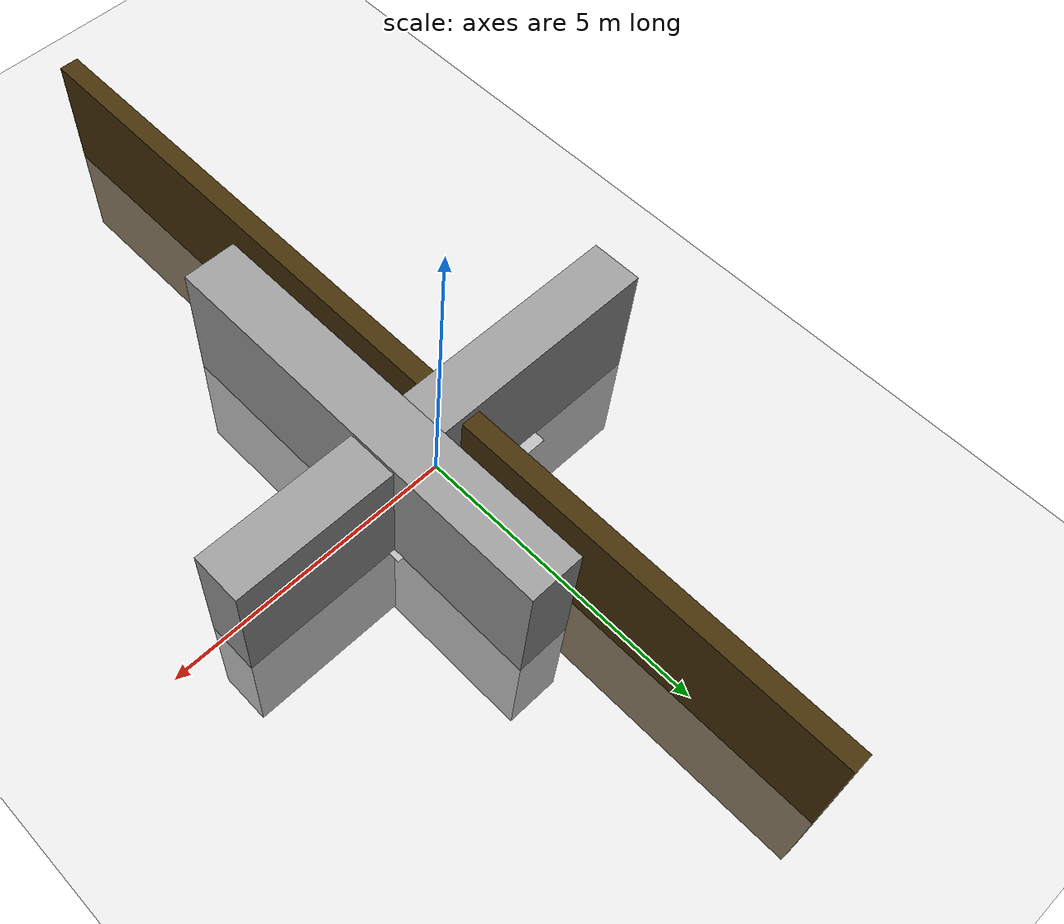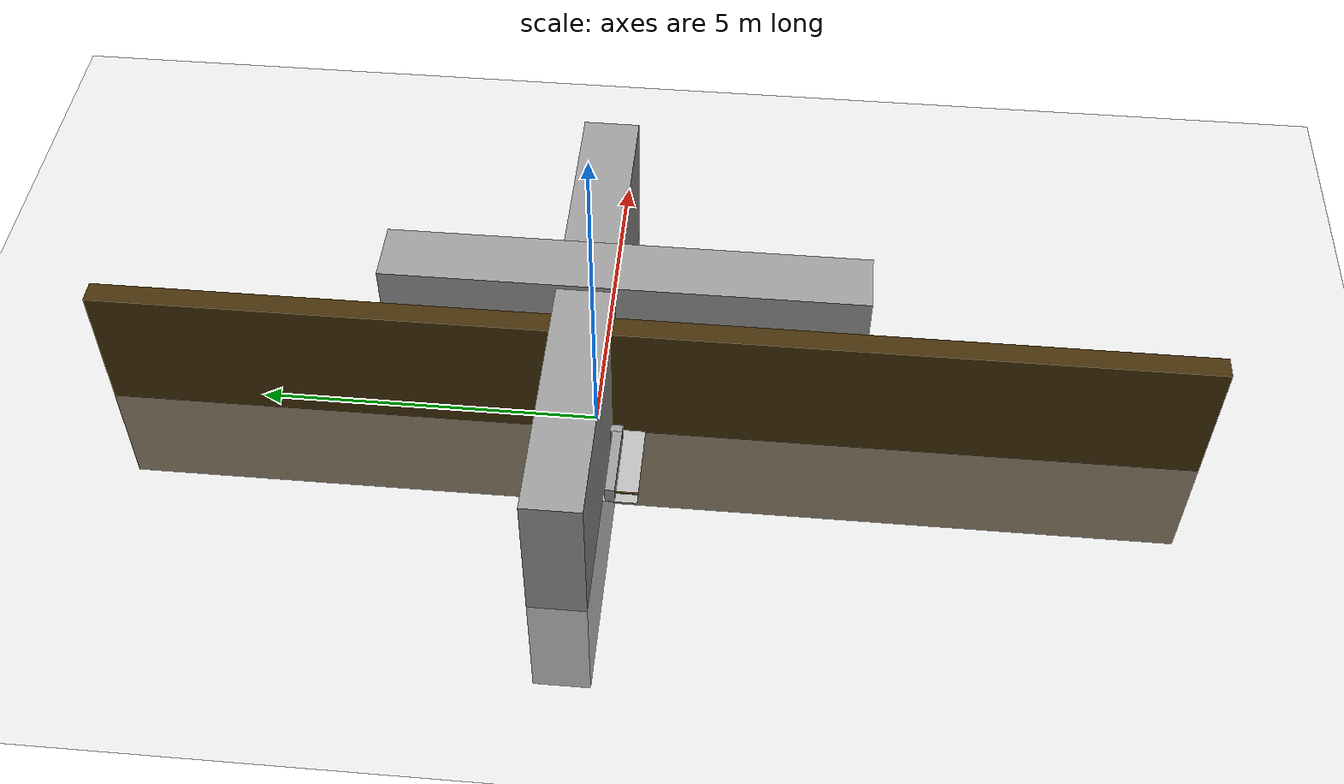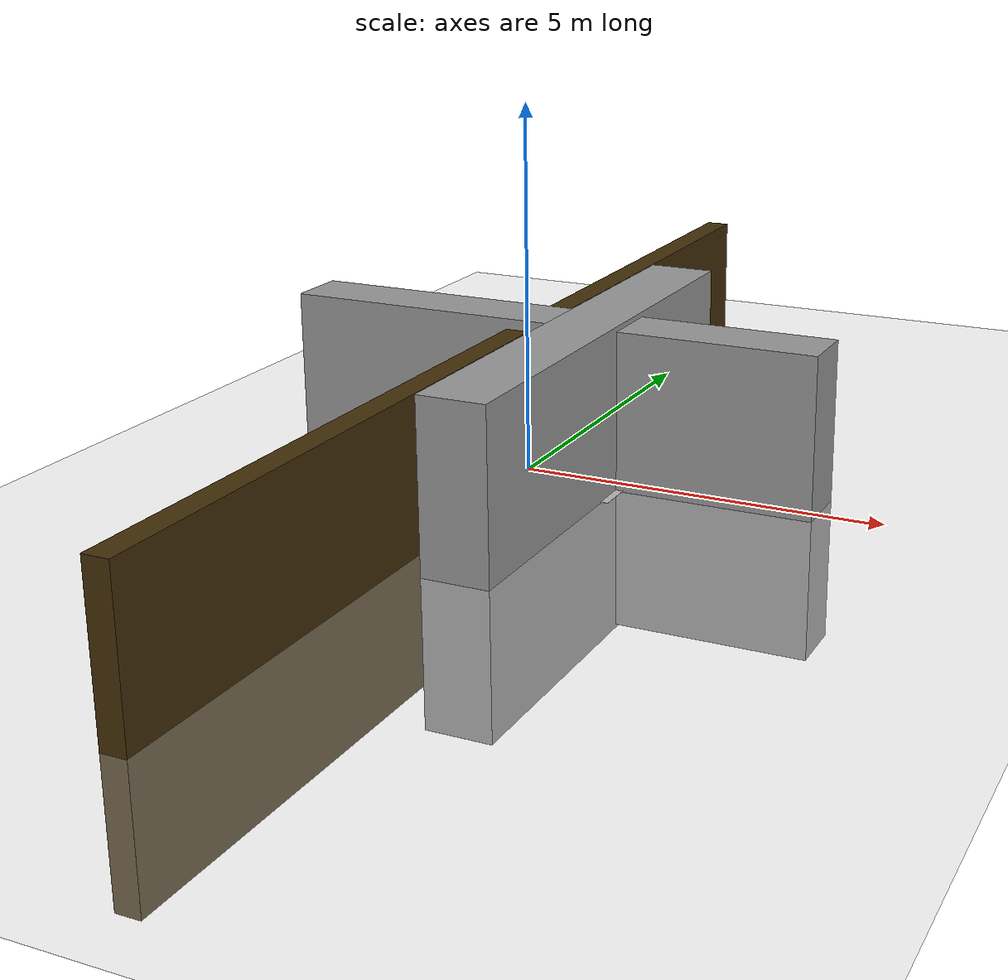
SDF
<sdf version="1.6">
 <world name="default">
  <light name="sun" type="directional">
   <pose>0 0 10 0 -0 0</pose>
   <diffuse>0.8 0.8 0.8 1</diffuse>
   <specular>0.2 0.2 0.2 1</specular>
   <attenuation>
    <range>1000</range>
    <constant>0.9</constant>
    <linear>0.01</linear>
    <quadratic>0.001</quadratic>
   </attenuation>
   <direction>-0.5 0.1 -0.9</direction>
   <spot><inner_angle>0</inner_angle><outer_angle>0</outer_angle><falloff>0</falloff></spot>
  </light>
  <model name="ground_plane">
   <static>1</static>
   <link name="link">
    <collision name="collision">
     <geometry><plane><normal>0 0 1</normal><size>100 100</size></plane></geometry>
     <surface>
      <contact><collide_bitmask>65535</collide_bitmask></contact>
      <friction><ode><mu>100</mu><mu2>50</mu2></ode></friction>
     </surface>
    </collision>
    <visual name="visual">
     <cast_shadows>0</cast_shadows>
     <geometry><plane><normal>0 0 1</normal><size>100 100</size></plane></geometry>
     <material>
      <script><uri>file://media/materials/scripts/gazebo.material</uri><name>Gazebo/Grey</name></script>
     </material>
    </visual>
   </link>
  </model>
  <gravity>0 0 -9.8</gravity>
  <magnetic_field>6e-06 2.3e-05 -4.2e-05</magnetic_field>
  <atmosphere type="adiabatic"/>
  <physics type="ode">
   <max_step_size>0.001</max_step_size>
   <real_time_factor>1</real_time_factor>
   <real_time_update_rate>1000</real_time_update_rate>
  </physics>
  <scene><ambient>0.4 0.4 0.4 1</ambient><background>0.7 0.7 0.7 1</background><shadows>1</shadows></scene>
  <spherical_coordinates>
   <surface_model>EARTH_WGS84</surface_model>
   <latitude_deg>0</latitude_deg>
   <longitude_deg>0</longitude_deg>
   <elevation>0</elevation>
   <heading_deg>0</heading_deg>
  </spherical_coordinates>
  <model name="my_ground_plane">
   <static>1</static>
   <link name="link">
    <collision name="collision">
     <geometry><plane><normal>0 0 1</normal><size>3.048 1.524</size></plane></geometry>
     <surface><friction><ode><mu>100</mu><mu2>50</mu2></ode></friction></surface>
    </collision>
    <visual name="visual">
     <cast_shadows>0</cast_shadows>
     <geometry><plane><normal>0 0 1</normal><size>3.048 1.524</size></plane></geometry>
     <material>
      <script>
       <uri>model://my_ground_plane/materials/scripts</uri>
       <uri>model://my_ground_plane/materials/textures</uri>
       <name>MyGroundPlane/Image</name>
      </script>
     </material>
    </visual>
   </link>
   <pose>-0.009613 0.014242 0 0 -0 0</pose>
  </model>
  <light name="user_point_light_0" type="point">
   <pose>-0.005122 0.013659 1 0 -0 0</pose>
   <diffuse>0.5 0.5 0.5 1</diffuse>
   <specular>0.1 0.1 0.1 1</specular>
   <attenuation>
    <range>20</range>
    <constant>0.5</constant>
    <linear>0.01</linear>
    <quadratic>0.001</quadratic>
   </attenuation>
   <cast_shadows>0</cast_shadows>
   <direction>0 0 -1</direction>
  </light>
  <light name="user_point_light_1" type="point">
   <pose>-0.005122 0.020488 1 0 -0 0</pose>
   <diffuse>0.5 0.5 0.5 1</diffuse>
   <specular>0.1 0.1 0.1 1</specular>
   <attenuation>
    <range>20</range>
    <constant>0.5</constant>
    <linear>0.01</linear>
    <quadratic>0.001</quadratic>
   </attenuation>
   <cast_shadows>0</cast_shadows>
   <direction>0 0 -1</direction>
  </light>
  <light name="user_point_light_2" type="point">
   <pose>-0.005122 0.013659 1 0 -0 0</pose>
   <diffuse>0.5 0.5 0.5 1</diffuse>
   <specular>0.1 0.1 0.1 1</specular>
   <attenuation>
    <range>20</range>
    <constant>0.5</constant>
    <linear>0.01</linear>
    <quadratic>0.001</quadratic>
   </attenuation>
   <cast_shadows>0</cast_shadows>
   <direction>0 0 -1</direction>
  </light>
  <model name="wall1">
   <link name="link">
    <inertial>
     <mass>1</mass>
     <inertia>
      <ixx>0.166667</ixx>
      <ixy>0</ixy>
      <ixz>0</ixz>
      <iyy>0.166667</iyy>
      <iyz>0</iyz>
      <izz>0.166667</izz>
     </inertia>
    </inertial>
    <pose>0 0 -0.072262 0 -0 0</pose>
    <visual name="visual">
     <geometry><box><size>0.019721 0.33539 0.025</size></box></geometry>
     <material>
      <script><name>Gazebo/Grey</name><uri>file://media/materials/scripts/gazebo.material</uri></script>
      <shader type="pixel"><normal_map>__default__</normal_map></shader>
      <ambient>0.592 0.329 0.223 1</ambient>
      <diffuse>0.451 0.322 0.11 1</diffuse>
      <specular>0.451 0.322 0.11 1</specular>
      <emissive>0.008 0.008 0.008 1</emissive>
     </material>
    </visual>
    <collision name="collision">
     <geometry><box><size>0.019721 0.33539 0.168678</size></box></geometry>
     <surface>
      <friction>
       <ode><mu>1</mu><mu2>1</mu2><fdir1>0 0 0</fdir1><slip1>0</slip1><slip2>0</slip2></ode>
       <torsional>
        <coefficient>1</coefficient>
        <patch_radius>0</patch_radius>
        <surface_radius>0</surface_radius>
        <use_patch_radius>1</use_patch_radius>
        <ode><slip>0</slip></ode>
       </torsional>
      </friction>
      <bounce><restitution_coefficient>0</restitution_coefficient><threshold>1e+06</threshold></bounce>
      <contact>
       <collide_without_contact>0</collide_without_contact>
       <collide_without_contact_bitmask>1</collide_without_contact_bitmask>
       <collide_bitmask>1</collide_bitmask>
       <ode>
        <soft_cfm>0</soft_cfm>
        <soft_erp>0.2</soft_erp>
        <kp>1e+13</kp>
        <kd>1</kd>
        <max_vel>0.01</max_vel>
        <min_depth>0</min_depth>
       </ode>
       <bullet>
        <split_impulse>1</split_impulse>
        <split_impulse_penetration_threshold>-0.01</split_impulse_penetration_threshold>
        <soft_cfm>0</soft_cfm>
        <soft_erp>0.2</soft_erp>
        <kp>1e+13</kp>
        <kd>1</kd>
       </bullet>
      </contact>
     </surface>
    </collision>
   </link>
   <static>0</static>
   <pose>1.34868 -0.591524 0.084341 0 2.9e-05 0</pose>
  </model>
  <model name="wall1_clone">
   <link name="link">
    <inertial>
     <mass>1</mass>
     <inertia>
      <ixx>0.166667</ixx>
      <ixy>0</ixy>
      <ixz>0</ixz>
      <iyy>0.166667</iyy>
      <iyz>0</iyz>
      <izz>0.166667</izz>
     </inertia>
    </inertial>
    <pose>0 0 -0.072262 0 -0 0</pose>
    <visual name="visual">
     <geometry><box><size>0.019721 0.33539 0.025</size></box></geometry>
     <material>
      <script><name>Gazebo/Grey</name><uri>file://media/materials/scripts/gazebo.material</uri></script>
      <shader type="pixel"><normal_map>__default__</normal_map></shader>
      <ambient>0.592 0.329 0.223 1</ambient>
      <diffuse>0.451 0.322 0.11 1</diffuse>
      <specular>0.451 0.322 0.11 1</specular>
      <emissive>0.008 0.008 0.008 1</emissive>
     </material>
    </visual>
    <collision name="collision">
     <geometry><box><size>0.019721 0.33539 0.168678</size></box></geometry>
     <surface>
      <friction>
       <ode><mu>1</mu><mu2>1</mu2><fdir1>0 0 0</fdir1><slip1>0</slip1><slip2>0</slip2></ode>
       <torsional>
        <coefficient>1</coefficient>
        <patch_radius>0</patch_radius>
        <surface_radius>0</surface_radius>
        <use_patch_radius>1</use_patch_radius>
        <ode><slip>0</slip></ode>
       </torsional>
      </friction>
      <bounce><restitution_coefficient>0</restitution_coefficient><threshold>1e+06</threshold></bounce>
      <contact>
       <collide_without_contact>0</collide_without_contact>
       <collide_without_contact_bitmask>1</collide_without_contact_bitmask>
       <collide_bitmask>1</collide_bitmask>
       <ode>
        <soft_cfm>0</soft_cfm>
        <soft_erp>0.2</soft_erp>
        <kp>1e+13</kp>
        <kd>1</kd>
        <max_vel>0.01</max_vel>
        <min_depth>0</min_depth>
       </ode>
       <bullet>
        <split_impulse>1</split_impulse>
        <split_impulse_penetration_threshold>-0.01</split_impulse_penetration_threshold>
        <soft_cfm>0</soft_cfm>
        <soft_erp>0.2</soft_erp>
        <kp>1e+13</kp>
        <kd>1</kd>
       </bullet>
      </contact>
     </surface>
    </collision>
   </link>
   <static>0</static>
   <pose>-1.37171 -0.584501 0.083538 0 2.9e-05 0</pose>
  </model>
  <model name="unit_box">
   <pose>0.345587 0.16879 0.112527 0 -0 0</pose>
   <link name="link">
    <inertial>
     <mass>1</mass>
     <inertia>
      <ixx>0.166667</ixx>
      <ixy>0</ixy>
      <ixz>0</ixz>
      <iyy>0.166667</iyy>
      <iyz>0</iyz>
      <izz>0.166667</izz>
     </inertia>
    </inertial>
    <collision name="collision"><geometry><box><size>7.54394 0.837612 4.12256</size></box></geometry></collision>
    <visual name="visual">
     <geometry><box><size>7.54394 0.837612 4.12256</size></box></geometry>
     <material>
      <script><name>Gazebo/Grey</name><uri>file://media/materials/scripts/gazebo.material</uri></script>
     </material>
    </visual>
   </link>
  </model>
  <model name="unit_box_clone">
   <pose>-0.367112 0.170673 0.112527 0 -0 0</pose>
   <link name="link">
    <inertial>
     <mass>1</mass>
     <inertia>
      <ixx>0.166667</ixx>
      <ixy>0</ixy>
      <ixz>0</ixz>
      <iyy>0.166667</iyy>
      <iyz>0</iyz>
      <izz>0.166667</izz>
     </inertia>
    </inertial>
    <collision name="collision"><geometry><box><size>0.132557 1.19387 0.242568</size></box></geometry></collision>
    <visual name="visual">
     <geometry><box><size>0.132557 1.19387 0.242568</size></box></geometry>
     <material>
      <script><name>Gazebo/Grey</name><uri>file://media/materials/scripts/gazebo.material</uri></script>
     </material>
    </visual>
   </link>
  </model>
  <model name="unit_box_0">
   <pose>0.953991 -0.35633 0.118567 0 -0 0</pose>
   <link name="link">
    <inertial>
     <mass>1</mass>
     <inertia>
      <ixx>0.166667</ixx>
      <ixy>0</ixy>
      <ixz>0</ixz>
      <iyy>0.166667</iyy>
      <iyz>0</iyz>
      <izz>0.166667</izz>
     </inertia>
    </inertial>
    <collision name="collision"><geometry><box><size>0.912397 7.02162 4.2493</size></box></geometry></collision>
    <visual name="visual">
     <geometry><box><size>0.912397 7.02162 4.2493</size></box></geometry>
     <material>
      <script><name>Gazebo/Grey</name><uri>file://media/materials/scripts/gazebo.material</uri></script>
     </material>
    </visual>
   </link>
  </model>
  <model name="unit_box_0_clone">
   <pose>-0.969825 -0.355588 0.118567 0 -0 0</pose>
   <link name="link">
    <inertial>
     <mass>1</mass>
     <inertia>
      <ixx>0.166667</ixx>
      <ixy>0</ixy>
      <ixz>0</ixz>
      <iyy>0.166667</iyy>
      <iyz>0</iyz>
      <izz>0.166667</izz>
     </inertia>
    </inertial>
    <collision name="collision"><geometry><box><size>1.09601 0.142418 0.235333</size></box></geometry></collision>
    <visual name="visual">
     <geometry><box><size>1.09601 0.142418 0.235333</size></box></geometry>
     <material>
      <script><name>Gazebo/Grey</name><uri>file://media/materials/scripts/gazebo.material</uri></script>
     </material>
    </visual>
   </link>
  </model>
  <model name="wall_01">
   <link name="link">
    <inertial>
     <mass>1</mass>
     <inertia>
      <ixx>0.166667</ixx>
      <ixy>0</ixy>
      <ixz>0</ixz>
      <iyy>0.166667</iyy>
      <iyz>0</iyz>
      <izz>0.166667</izz>
     </inertia>
    </inertial>
    <visual name="visual">
     <geometry><box><size>0.328054 16.0353 3.81283</size></box></geometry>
     <material>
      <script><name>Gazebo/Grey</name><uri>file://media/materials/scripts/gazebo.material</uri></script>
      <shader type="pixel"><normal_map>__default__</normal_map></shader>
      <ambient>0.267 0.188 0.039 1</ambient>
      <diffuse>0.7 0.7 0.7 1</diffuse>
      <specular>0.01 0.01 0.01 1</specular>
      <emissive>0 0 0 1</emissive>
     </material>
    </visual>
    <collision name="collision">
     <geometry><box><size>0.328054 16.0353 3.81283</size></box></geometry>
     <surface>
      <friction>
       <ode><mu>1</mu><mu2>1</mu2><fdir1>0 0 0</fdir1><slip1>0</slip1><slip2>0</slip2></ode>
       <torsional>
        <coefficient>1</coefficient>
        <patch_radius>0</patch_radius>
        <surface_radius>0</surface_radius>
        <use_patch_radius>1</use_patch_radius>
        <ode><slip>0</slip></ode>
       </torsional>
      </friction>
      <bounce><restitution_coefficient>0</restitution_coefficient><threshold>1e+06</threshold></bounce>
      <contact>
       <collide_without_contact>0</collide_without_contact>
       <collide_without_contact_bitmask>1</collide_without_contact_bitmask>
       <collide_bitmask>1</collide_bitmask>
       <ode>
        <soft_cfm>0</soft_cfm>
        <soft_erp>0.2</soft_erp>
        <kp>1e+13</kp>
        <kd>1</kd>
        <max_vel>0.01</max_vel>
        <min_depth>0</min_depth>
       </ode>
       <bullet>
        <split_impulse>1</split_impulse>
        <split_impulse_penetration_threshold>-0.01</split_impulse_penetration_threshold>
        <soft_cfm>0</soft_cfm>
        <soft_erp>0.2</soft_erp>
        <kp>1e+13</kp>
        <kd>1</kd>
       </bullet>
      </contact>
     </surface>
    </collision>
   </link>
   <static>0</static>
   <pose>-0.028474 -0.764493 0.124343 0 -0 0</pose>
  </model>
 </world>
</sdf>
